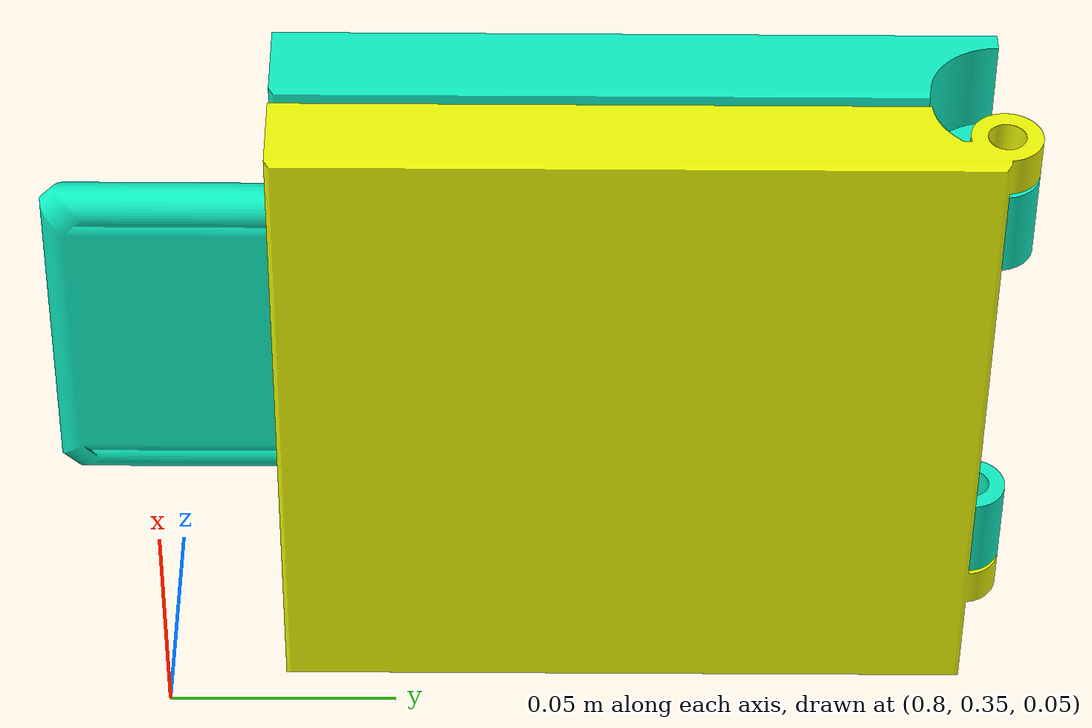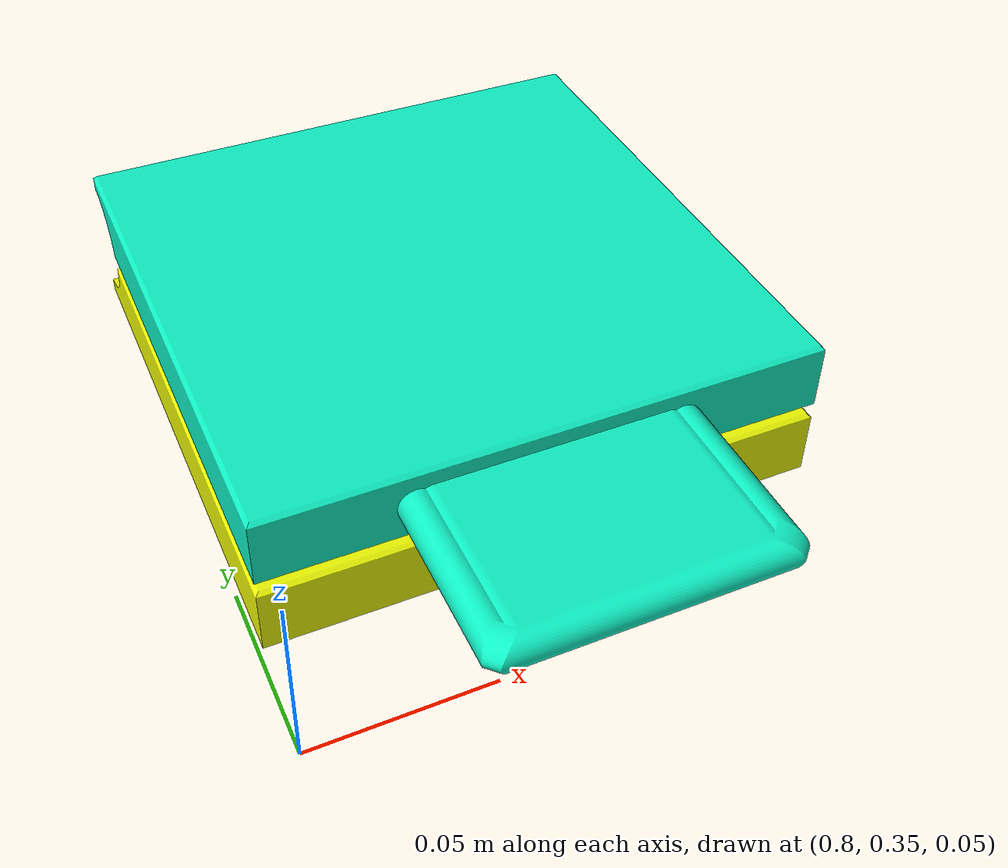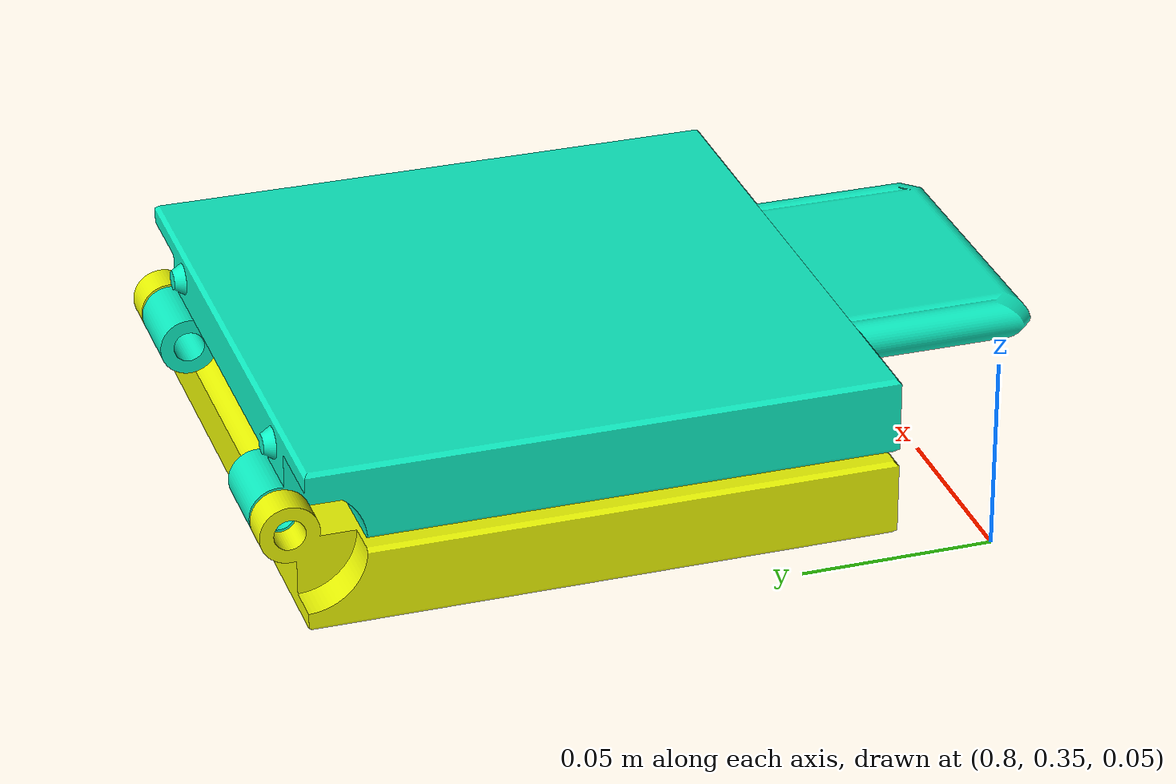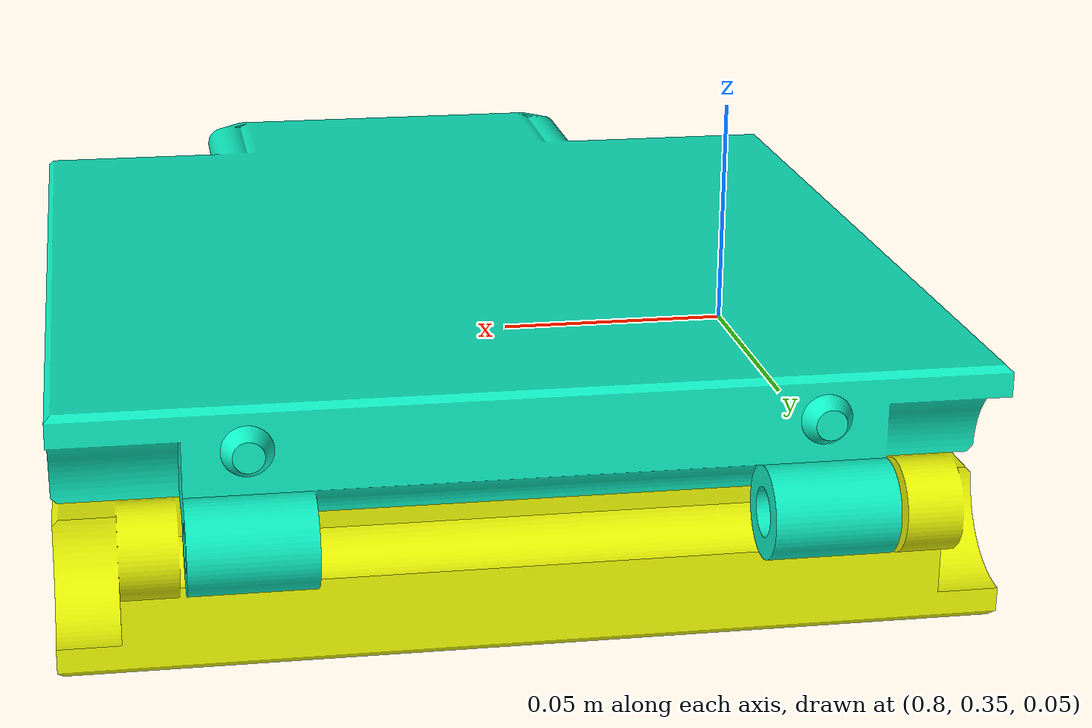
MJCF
<mujoco model="f_block">

  <default>
    <include file="../assets/foldable_block_1/f_block_classes.xml" />
  </default>

  <asset>
    <include file="../assets/foldable_block_1/f_block_assets.xml" />
  </asset>

  <worldbody>

    <body name="f1_block_1" pos="0.8 0.37537452 0.10" quat="0.5 -0.5 -0.5 0.5 ">
        <joint name="f1_block_free_joint" type="free"/>
        <inertial mass="1" pos="0.075 0.01 -0.075" diaginertia="0.0102675 0.0102675 0.00666"/>
        <geom mesh="block_1" rgba="0.04969316144991731 0.9374098074264089 0.7663034449013295 1" class="f_block_visual"/>
        <geom mesh="block_1_collision_0" rgba="0.04969316144991731 0.9374098074264089 0.7663034449013295 1" class="f_block_collision"/>
        <geom mesh="block_1_collision_1" rgba="0.743716093669547 0.2316001065007981 0.9216810209632792 1" class="f_block_collision"/>
        <geom mesh="block_1_collision_2" rgba="0.8378644262541036 0.0631595487671266 0.5772883119243784 1" class="f_block_collision"/>
        <geom mesh="block_1_collision_3" rgba="0.55182267776058 0.49627483813619744 0.5924762856545812 1" class="f_block_collision"/>
        <geom mesh="block_1_collision_4" rgba="0.7660553621142147 0.7138605078375927 0.4267323037349189 1" class="f_block_collision"/>
        <geom mesh="block_1_collision_5" rgba="0.8082572375455168 0.10578399965795815 0.1920330598775094 1" class="f_block_collision"/>
        <geom mesh="block_1_collision_6" rgba="0.4843090859794702 0.9800503009733361 0.6965162653666385 1" class="f_block_collision"/>
        <geom mesh="block_1_collision_7" rgba="0.13950328260310574 0.578697257060118 0.23151833578383885 1" class="f_block_collision"/>

          <body name="f1_block_2" pos="0 0.042828 -0.150" quat=" 0 1 0 0">
              <inertial mass="1" pos="0.075 0.01 -0.075" diaginertia="0.0102675 0.0102675 0.00666"/>
              <joint name="f_block_1_joint_1" pos="0.151414 0.021414 0" axis="0 0 1"  damping="0.0" range="0 3.1415"/>
              <geom mesh="block_2" rgba="0.9278748131857267 0.9750400105728048 0.011301633201228567 1" class="f_block_visual"/>
              <geom mesh="block_2_collision_0" rgba="0.9278748131857267 0.9750400105728048 0.011301633201228567 1" class="f_block_collision"/>
              <geom mesh="block_2_collision_1" rgba="0.33375377122351035 0.7268079274682246 0.33978252710309587 1" class="f_block_collision"/>
              <geom mesh="block_2_collision_2" rgba="0.6440924342090338 0.9742451184719949 0.5798394669977455 1" class="f_block_collision"/>
              <geom mesh="block_2_collision_3" rgba="0.5669656578747101 0.1654589238177271 0.041036840593084545 1" class="f_block_collision"/>
              <geom mesh="block_2_collision_4" rgba="0.9684390604777308 0.5921099450743562 0.917463620984305 1" class="f_block_collision"/>
              <geom mesh="block_2_collision_5" rgba="0.6724673830008813 0.1950970263357703 0.008809823749446277 1" class="f_block_collision"/>
              <geom mesh="block_2_collision_6" rgba="0.8518830306097929 0.06563841754600352 0.8354793984662352 1" class="f_block_collision"/>
              <geom mesh="block_2_collision_7" rgba="0.8112231977741263 0.88752123124642 0.818457463422128 1" class="f_block_collision"/>
              <geom mesh="block_2_collision_8" rgba="0.7255226473485543 0.15282364594796738 0.41489331031318155 1" class="f_block_collision"/>
              <geom mesh="block_2_collision_9" rgba="0.026777736072874703 0.3940134822219922 0.9963385073324219 1" class="f_block_collision"/>
              <geom mesh="block_2_collision_10" rgba="0.7904621726106753 0.21060817855837755 0.3494399014909447 1" class="f_block_collision"/>
              <geom mesh="block_2_collision_11" rgba="0.8407632955708272 0.6188891906362596 0.2210174511930707 1" class="f_block_collision"/>
              <geom mesh="block_2_collision_12" rgba="0.6923367431980892 0.9175424833753784 0.7976016315359191 1" class="f_block_collision"/>
              <geom mesh="block_2_collision_13" rgba="0.3094059396799437 0.3662935882928817 0.9658657212785459 1" class="f_block_collision"/>
              <geom mesh="block_2_collision_14" rgba="0.761795301723771 0.604652410455299 0.30989459151604026 1" class="f_block_collision"/>
          </body>

    </body>
  </worldbody>

  <actuator>
    <!-- actuators for position control -->

    <!-- actuators for velocity control -->

    <!-- actuators for torque control -->

  </actuator>

</mujoco>

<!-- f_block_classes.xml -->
<mujocoinclude>
    <default class="f_block_visual">
    <geom group="2" type="mesh" contype="0" conaffinity="0"/>
    </default>
    <default class="f_block_collision">
    <geom group="3" type="mesh"/>
    </default>
</mujocoinclude>

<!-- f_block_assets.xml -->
<mujocoinclude>
    <!-- block 1 assets -->
    <mesh file="../assets/foldable_block_1/assets/block_1/block_1.obj"/>
    <mesh file="../assets/foldable_block_1/assets/block_1/block_1_collision_0.obj"/>
    <mesh file="../assets/foldable_block_1/assets/block_1/block_1_collision_1.obj"/>
    <mesh file="../assets/foldable_block_1/assets/block_1/block_1_collision_2.obj"/>
    <mesh file="../assets/foldable_block_1/assets/block_1/block_1_collision_3.obj"/>
    <mesh file="../assets/foldable_block_1/assets/block_1/block_1_collision_4.obj"/>
    <mesh file="../assets/foldable_block_1/assets/block_1/block_1_collision_5.obj"/>
    <mesh file="../assets/foldable_block_1/assets/block_1/block_1_collision_6.obj"/>
    <mesh file="../assets/foldable_block_1/assets/block_1/block_1_collision_7.obj"/>

    <!-- block 2 assets -->
    <mesh file="../assets/foldable_block_1/assets/block_2/block_2.obj"/>
    <mesh file="../assets/foldable_block_1/assets/block_2/block_2_collision_0.obj"/>
    <mesh file="../assets/foldable_block_1/assets/block_2/block_2_collision_1.obj"/>
    <mesh file="../assets/foldable_block_1/assets/block_2/block_2_collision_2.obj"/>
    <mesh file="../assets/foldable_block_1/assets/block_2/block_2_collision_3.obj"/>
    <mesh file="../assets/foldable_block_1/assets/block_2/block_2_collision_4.obj"/>
    <mesh file="../assets/foldable_block_1/assets/block_2/block_2_collision_5.obj"/>
    <mesh file="../assets/foldable_block_1/assets/block_2/block_2_collision_6.obj"/>
    <mesh file="../assets/foldable_block_1/assets/block_2/block_2_collision_7.obj"/>
    <mesh file="../assets/foldable_block_1/assets/block_2/block_2_collision_8.obj"/>
    <mesh file="../assets/foldable_block_1/assets/block_2/block_2_collision_9.obj"/>
    <mesh file="../assets/foldable_block_1/assets/block_2/block_2_collision_10.obj"/>
    <mesh file="../assets/foldable_block_1/assets/block_2/block_2_collision_11.obj"/>
    <mesh file="../assets/foldable_block_1/assets/block_2/block_2_collision_12.obj"/>
    <mesh file="../assets/foldable_block_1/assets/block_2/block_2_collision_13.obj"/>
    <mesh file="../assets/foldable_block_1/assets/block_2/block_2_collision_14.obj"/>

</mujocoinclude>
